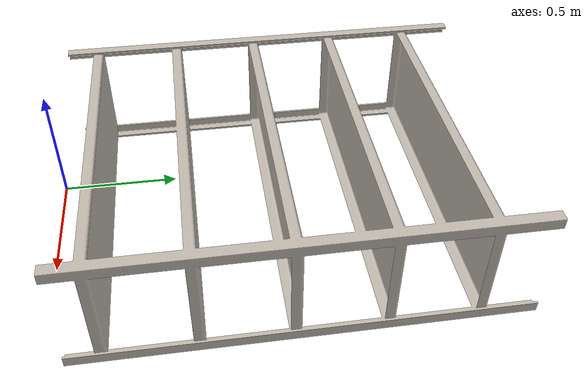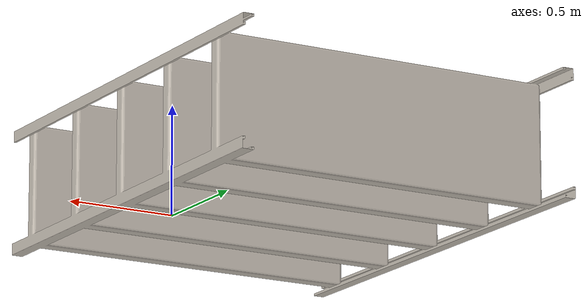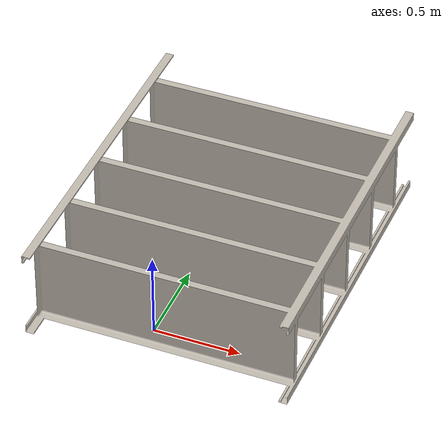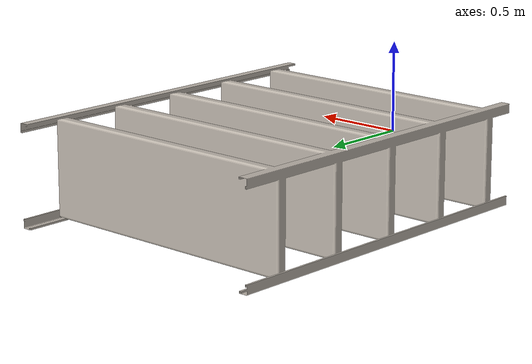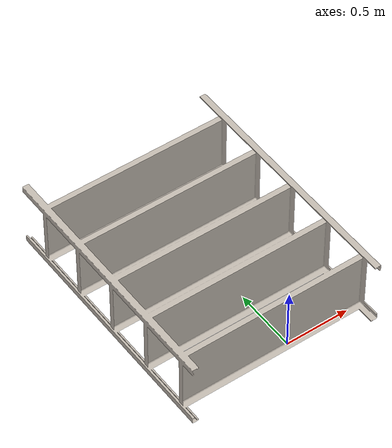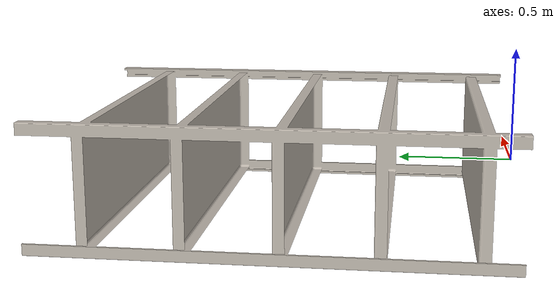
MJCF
<mujoco model="static_Cloner_1__0_4">
  <default>
    <default class="visual">
      <geom group="2" type="mesh" contype="0" conaffinity="0"/>
    </default>
    <default class="collision">
      <geom group="3" type="mesh"/>
    </default>
  </default>
  <asset>
    <texture type="2d" name="shelf" file="shelf.png"/>
    <material name="Scene_-_Root.004" texture="shelf" specular="0.5" shininess="0.25"/>
    <mesh file="static_Cloner_1__0_4.obj"/>
    <mesh file="static_Cloner_1__0_4_collision_0.obj"/>
    <mesh file="static_Cloner_1__0_4_collision_1.obj"/>
    <mesh file="static_Cloner_1__0_4_collision_2.obj"/>
    <mesh file="static_Cloner_1__0_4_collision_3.obj"/>
    <mesh file="static_Cloner_1__0_4_collision_4.obj"/>
    <mesh file="static_Cloner_1__0_4_collision_5.obj"/>
    <mesh file="static_Cloner_1__0_4_collision_6.obj"/>
    <mesh file="static_Cloner_1__0_4_collision_7.obj"/>
    <mesh file="static_Cloner_1__0_4_collision_8.obj"/>
    <mesh file="static_Cloner_1__0_4_collision_9.obj"/>
    <mesh file="static_Cloner_1__0_4_collision_10.obj"/>
    <mesh file="static_Cloner_1__0_4_collision_11.obj"/>
    <mesh file="static_Cloner_1__0_4_collision_12.obj"/>
    <mesh file="static_Cloner_1__0_4_collision_13.obj"/>
    <mesh file="static_Cloner_1__0_4_collision_14.obj"/>
    <mesh file="static_Cloner_1__0_4_collision_15.obj"/>
    <mesh file="static_Cloner_1__0_4_collision_16.obj"/>
    <mesh file="static_Cloner_1__0_4_collision_17.obj"/>
    <mesh file="static_Cloner_1__0_4_collision_18.obj"/>
    <mesh file="static_Cloner_1__0_4_collision_19.obj"/>
    <mesh file="static_Cloner_1__0_4_collision_20.obj"/>
    <mesh file="static_Cloner_1__0_4_collision_21.obj"/>
    <mesh file="static_Cloner_1__0_4_collision_22.obj"/>
    <mesh file="static_Cloner_1__0_4_collision_23.obj"/>
    <mesh file="static_Cloner_1__0_4_collision_24.obj"/>
    <mesh file="static_Cloner_1__0_4_collision_25.obj"/>
    <mesh file="static_Cloner_1__0_4_collision_26.obj"/>
    <mesh file="static_Cloner_1__0_4_collision_27.obj"/>
    <mesh file="static_Cloner_1__0_4_collision_28.obj"/>
    <mesh file="static_Cloner_1__0_4_collision_29.obj"/>
    <mesh file="static_Cloner_1__0_4_collision_30.obj"/>
    <mesh file="static_Cloner_1__0_4_collision_31.obj"/>
    <mesh file="static_Cloner_1__0_4_collision_32.obj"/>
    <mesh file="static_Cloner_1__0_4_collision_33.obj"/>
    <mesh file="static_Cloner_1__0_4_collision_34.obj"/>
    <mesh file="static_Cloner_1__0_4_collision_35.obj"/>
    <mesh file="static_Cloner_1__0_4_collision_36.obj"/>
    <mesh file="static_Cloner_1__0_4_collision_37.obj"/>
    <mesh file="static_Cloner_1__0_4_collision_38.obj"/>
    <mesh file="static_Cloner_1__0_4_collision_39.obj"/>
    <mesh file="static_Cloner_1__0_4_collision_40.obj"/>
    <mesh file="static_Cloner_1__0_4_collision_41.obj"/>
    <mesh file="static_Cloner_1__0_4_collision_42.obj"/>
    <mesh file="static_Cloner_1__0_4_collision_43.obj"/>
    <mesh file="static_Cloner_1__0_4_collision_44.obj"/>
    <mesh file="static_Cloner_1__0_4_collision_45.obj"/>
    <mesh file="static_Cloner_1__0_4_collision_46.obj"/>
    <mesh file="static_Cloner_1__0_4_collision_47.obj"/>
    <mesh file="static_Cloner_1__0_4_collision_48.obj"/>
    <mesh file="static_Cloner_1__0_4_collision_49.obj"/>
    <mesh file="static_Cloner_1__0_4_collision_50.obj"/>
    <mesh file="static_Cloner_1__0_4_collision_51.obj"/>
    <mesh file="static_Cloner_1__0_4_collision_52.obj"/>
    <mesh file="static_Cloner_1__0_4_collision_53.obj"/>
    <mesh file="static_Cloner_1__0_4_collision_54.obj"/>
    <mesh file="static_Cloner_1__0_4_collision_55.obj"/>
    <mesh file="static_Cloner_1__0_4_collision_56.obj"/>
    <mesh file="static_Cloner_1__0_4_collision_57.obj"/>
    <mesh file="static_Cloner_1__0_4_collision_58.obj"/>
    <mesh file="static_Cloner_1__0_4_collision_59.obj"/>
    <mesh file="static_Cloner_1__0_4_collision_60.obj"/>
    <mesh file="static_Cloner_1__0_4_collision_61.obj"/>
    <mesh file="static_Cloner_1__0_4_collision_62.obj"/>
  </asset>
  <worldbody>
    <body name="static_Cloner_1__0_4">
      <geom material="Scene_-_Root.004" mesh="static_Cloner_1__0_4" class="visual"/>
      <geom mesh="static_Cloner_1__0_4_collision_0" rgba="0.8364085926411171 0.499139484498787 0.03745907001804716 1" class="collision"/>
      <geom mesh="static_Cloner_1__0_4_collision_1" rgba="0.9818685765499267 0.5103084116384947 0.9018876383630129 1" class="collision"/>
      <geom mesh="static_Cloner_1__0_4_collision_2" rgba="0.574844816397853 0.6412052051629603 0.09842378802755414 1" class="collision"/>
      <geom mesh="static_Cloner_1__0_4_collision_3" rgba="0.8954739468323306 0.09902442999059513 0.5807858467063398 1" class="collision"/>
      <geom mesh="static_Cloner_1__0_4_collision_4" rgba="0.6255927019446818 0.16614145500682265 0.8684030500056589 1" class="collision"/>
      <geom mesh="static_Cloner_1__0_4_collision_5" rgba="0.84399377511625 0.10148107608483492 0.5703649770176142 1" class="collision"/>
      <geom mesh="static_Cloner_1__0_4_collision_6" rgba="0.5958049595030163 0.7289907031569058 0.8769211238696112 1" class="collision"/>
      <geom mesh="static_Cloner_1__0_4_collision_7" rgba="0.47653982985983634 0.758285663203714 0.3615553125892944 1" class="collision"/>
      <geom mesh="static_Cloner_1__0_4_collision_8" rgba="0.0895620001970886 0.8935350076956325 0.549421476468102 1" class="collision"/>
      <geom mesh="static_Cloner_1__0_4_collision_9" rgba="0.4402420458268901 0.8168216774754626 0.8690370538015431 1" class="collision"/>
      <geom mesh="static_Cloner_1__0_4_collision_10" rgba="0.021897415933504916 0.08496143737137929 0.6809760485736547 1" class="collision"/>
      <geom mesh="static_Cloner_1__0_4_collision_11" rgba="0.3201063199333767 0.8307727460747486 0.24512515052282224 1" class="collision"/>
      <geom mesh="static_Cloner_1__0_4_collision_12" rgba="0.08276440603675361 0.4033181083972289 0.43220822423851746 1" class="collision"/>
      <geom mesh="static_Cloner_1__0_4_collision_13" rgba="0.5899173214175647 0.6681893575121595 0.5173657270341485 1" class="collision"/>
      <geom mesh="static_Cloner_1__0_4_collision_14" rgba="0.20865867842324715 0.028032571132731388 0.2664888607257213 1" class="collision"/>
      <geom mesh="static_Cloner_1__0_4_collision_15" rgba="0.9870508450884539 0.37189093719320954 0.5556582925996971 1" class="collision"/>
      <geom mesh="static_Cloner_1__0_4_collision_16" rgba="0.6560576369524735 0.12416433010970573 0.9907832735541913 1" class="collision"/>
      <geom mesh="static_Cloner_1__0_4_collision_17" rgba="0.5519626515125176 0.32687944328835605 0.6970184463207998 1" class="collision"/>
      <geom mesh="static_Cloner_1__0_4_collision_18" rgba="0.4689513028950524 0.4674214477920885 0.49473946604011343 1" class="collision"/>
      <geom mesh="static_Cloner_1__0_4_collision_19" rgba="0.422169603186215 0.7369081416961286 0.16942947623530946 1" class="collision"/>
      <geom mesh="static_Cloner_1__0_4_collision_20" rgba="0.34484290749834967 0.44246762800609274 0.08238557387202505 1" class="collision"/>
      <geom mesh="static_Cloner_1__0_4_collision_21" rgba="0.12816088875475196 0.5379947481904683 0.9849295924778855 1" class="collision"/>
      <geom mesh="static_Cloner_1__0_4_collision_22" rgba="0.1360739527621574 0.9675838491752919 0.8253105698383267 1" class="collision"/>
      <geom mesh="static_Cloner_1__0_4_collision_23" rgba="0.07832228613959635 0.4982042592991307 0.7175612545553044 1" class="collision"/>
      <geom mesh="static_Cloner_1__0_4_collision_24" rgba="0.5440896307064401 0.7131794187543407 0.7153052352555246 1" class="collision"/>
      <geom mesh="static_Cloner_1__0_4_collision_25" rgba="0.7312294900359141 0.8498664744443709 0.6326261506156784 1" class="collision"/>
      <geom mesh="static_Cloner_1__0_4_collision_26" rgba="0.44822800315367906 0.6989792265226469 0.6029793895518303 1" class="collision"/>
      <geom mesh="static_Cloner_1__0_4_collision_27" rgba="0.625389495620177 0.3973746223742063 0.20837280808977054 1" class="collision"/>
      <geom mesh="static_Cloner_1__0_4_collision_28" rgba="0.22256496717528051 0.8798753332269521 0.43473251815087155 1" class="collision"/>
      <geom mesh="static_Cloner_1__0_4_collision_29" rgba="0.2518742725166836 0.15079071956208945 0.5160877546493936 1" class="collision"/>
      <geom mesh="static_Cloner_1__0_4_collision_30" rgba="0.5170005999582103 0.7981628309708599 0.5576204194410543 1" class="collision"/>
      <geom mesh="static_Cloner_1__0_4_collision_31" rgba="0.2090414528416168 0.1633244727472929 0.3194357756256858 1" class="collision"/>
      <geom mesh="static_Cloner_1__0_4_collision_32" rgba="0.7642553593948704 0.7280391055946658 0.5811201215984512 1" class="collision"/>
      <geom mesh="static_Cloner_1__0_4_collision_33" rgba="0.4434677557000052 0.7562603133785921 0.46325673230996045 1" class="collision"/>
      <geom mesh="static_Cloner_1__0_4_collision_34" rgba="0.6823888081029567 0.5977754807422486 0.06436100391767352 1" class="collision"/>
      <geom mesh="static_Cloner_1__0_4_collision_35" rgba="0.9064799432724577 0.6746476774767726 0.44646864622089977 1" class="collision"/>
      <geom mesh="static_Cloner_1__0_4_collision_36" rgba="0.9237475652843318 0.6321579733275335 0.8310144021610862 1" class="collision"/>
      <geom mesh="static_Cloner_1__0_4_collision_37" rgba="0.297857722890438 0.32159219621376667 0.8467190210414026 1" class="collision"/>
      <geom mesh="static_Cloner_1__0_4_collision_38" rgba="0.2397902360396078 0.349621844151065 0.29332326456950675 1" class="collision"/>
      <geom mesh="static_Cloner_1__0_4_collision_39" rgba="0.6895139107505417 0.4621593741887542 0.2515735674665792 1" class="collision"/>
      <geom mesh="static_Cloner_1__0_4_collision_40" rgba="0.8687362903229734 0.32174729676864544 0.4650003188965448 1" class="collision"/>
      <geom mesh="static_Cloner_1__0_4_collision_41" rgba="0.08958191028281326 0.9870255781655302 0.284053105458283 1" class="collision"/>
      <geom mesh="static_Cloner_1__0_4_collision_42" rgba="0.008610650623064764 0.36121623803512704 0.5816821830959412 1" class="collision"/>
      <geom mesh="static_Cloner_1__0_4_collision_43" rgba="0.12465780050805697 0.5703511030377822 0.28427827049788335 1" class="collision"/>
      <geom mesh="static_Cloner_1__0_4_collision_44" rgba="0.9596069827092476 0.6544701757601811 0.26404812010369005 1" class="collision"/>
      <geom mesh="static_Cloner_1__0_4_collision_45" rgba="0.4151236868936935 0.9207966595439495 0.3150908358034158 1" class="collision"/>
      <geom mesh="static_Cloner_1__0_4_collision_46" rgba="0.29932184038793774 0.39053137334754584 0.4105818552230547 1" class="collision"/>
      <geom mesh="static_Cloner_1__0_4_collision_47" rgba="0.8698135225451352 0.40646386690361624 0.4261072361659002 1" class="collision"/>
      <geom mesh="static_Cloner_1__0_4_collision_48" rgba="0.052721975165447854 0.6639768476761758 0.5773325127245201 1" class="collision"/>
      <geom mesh="static_Cloner_1__0_4_collision_49" rgba="0.06731437602983659 0.10832306139600434 0.6036550343446457 1" class="collision"/>
      <geom mesh="static_Cloner_1__0_4_collision_50" rgba="0.5049880318263872 0.9896886343662414 0.5223630189376992 1" class="collision"/>
      <geom mesh="static_Cloner_1__0_4_collision_51" rgba="0.6834838881043558 0.9499380442999386 0.03018739098293799 1" class="collision"/>
      <geom mesh="static_Cloner_1__0_4_collision_52" rgba="0.2363023472386504 0.978770232723154 0.17482472073565813 1" class="collision"/>
      <geom mesh="static_Cloner_1__0_4_collision_53" rgba="0.5433424734907134 0.7492631372273382 0.9202479103098589 1" class="collision"/>
      <geom mesh="static_Cloner_1__0_4_collision_54" rgba="0.27590694951127037 0.983922829904471 0.48112137765111107 1" class="collision"/>
      <geom mesh="static_Cloner_1__0_4_collision_55" rgba="0.1814897872211506 0.1281993420421439 0.5630036558481946 1" class="collision"/>
      <geom mesh="static_Cloner_1__0_4_collision_56" rgba="0.085640910841279 0.31515421619977435 0.9760577432928786 1" class="collision"/>
      <geom mesh="static_Cloner_1__0_4_collision_57" rgba="0.8350761630381007 0.4832895373831061 0.31285083420215 1" class="collision"/>
      <geom mesh="static_Cloner_1__0_4_collision_58" rgba="0.7598459532273348 0.5123396983173983 0.9529197358850124 1" class="collision"/>
      <geom mesh="static_Cloner_1__0_4_collision_59" rgba="0.10258608868269847 0.5348417969081437 0.8259603106527562 1" class="collision"/>
      <geom mesh="static_Cloner_1__0_4_collision_60" rgba="0.3166141585143015 0.0977893491584868 0.6337799249649694 1" class="collision"/>
      <geom mesh="static_Cloner_1__0_4_collision_61" rgba="0.5217886421910861 0.9535498061933076 0.7361476222886528 1" class="collision"/>
      <geom mesh="static_Cloner_1__0_4_collision_62" rgba="0.8817394370248802 0.19658953780561494 0.09661864699097578 1" class="collision"/>
    </body>
  </worldbody>
</mujoco>
